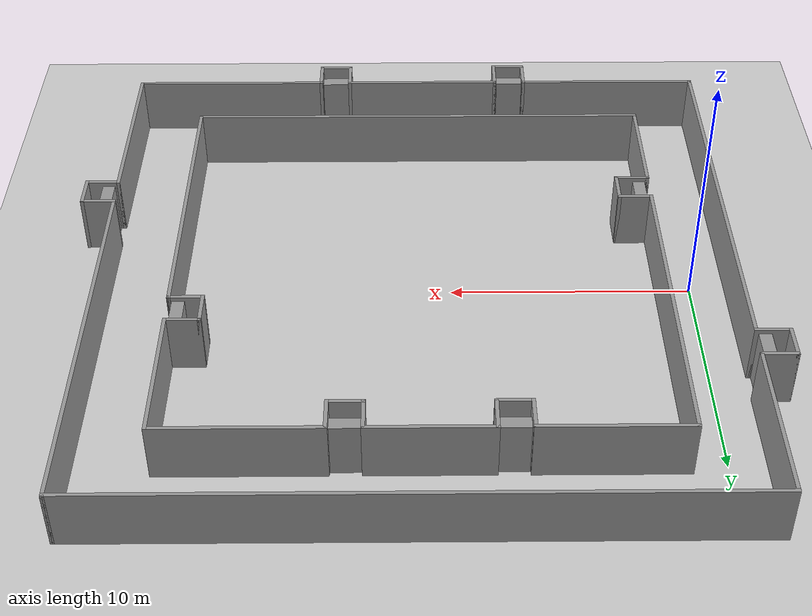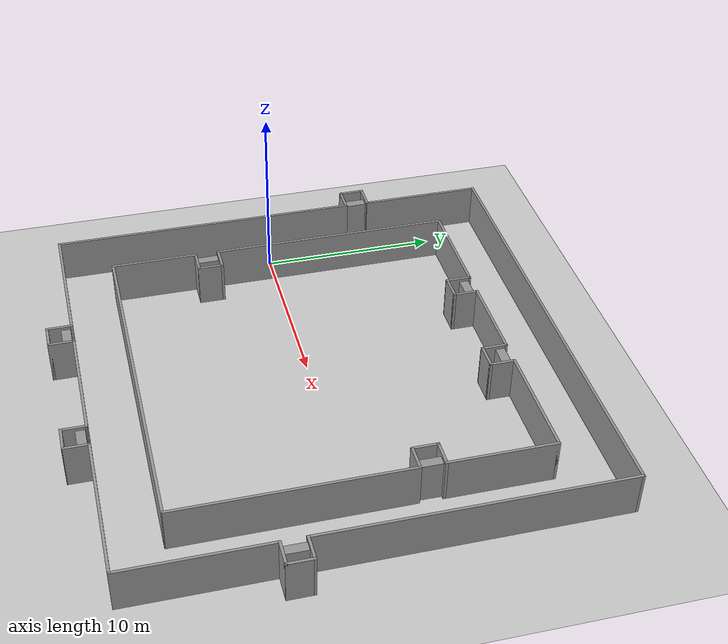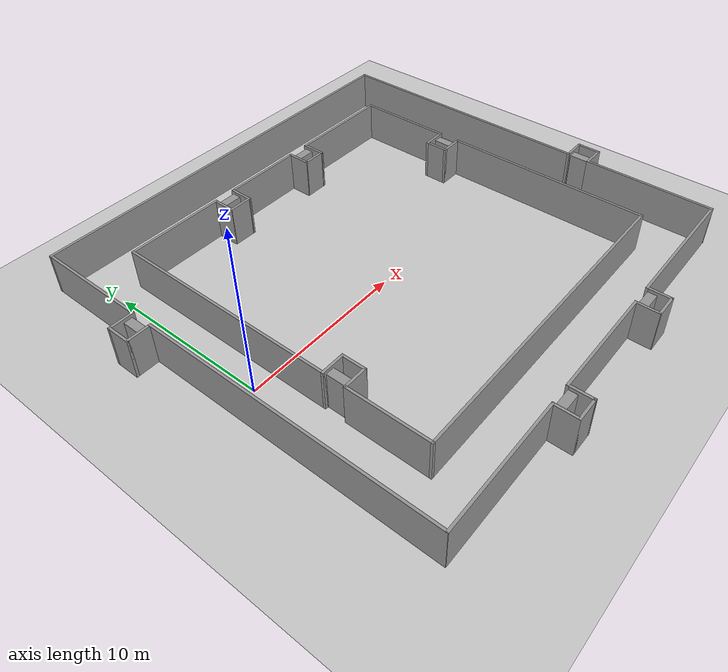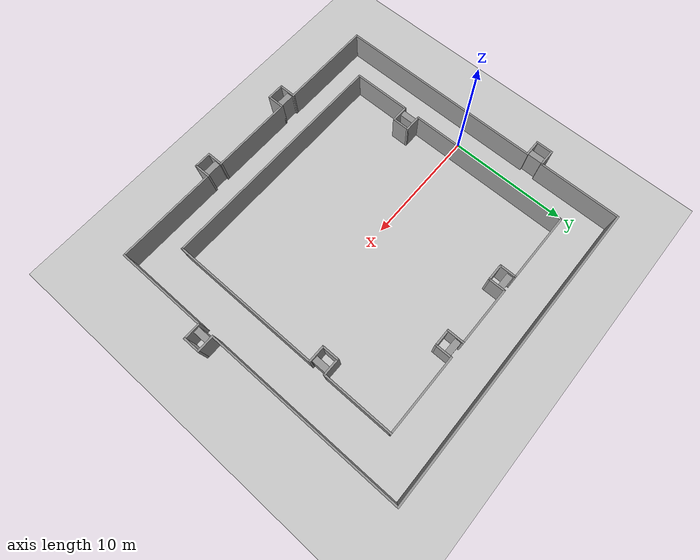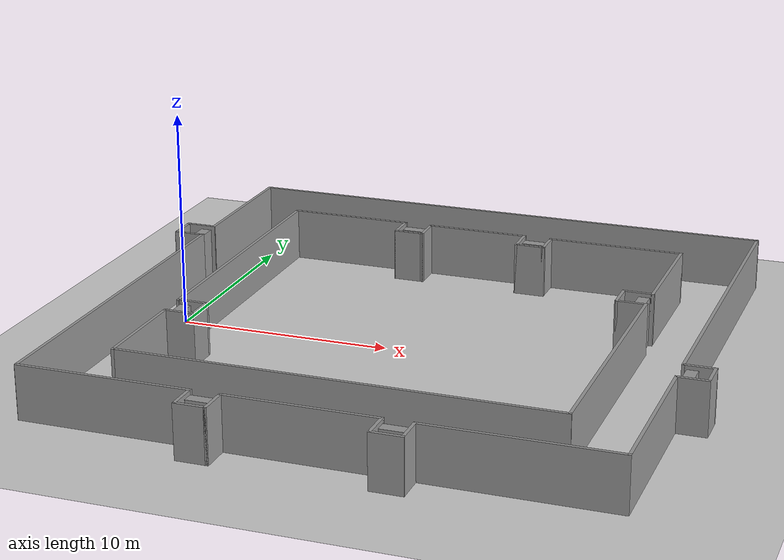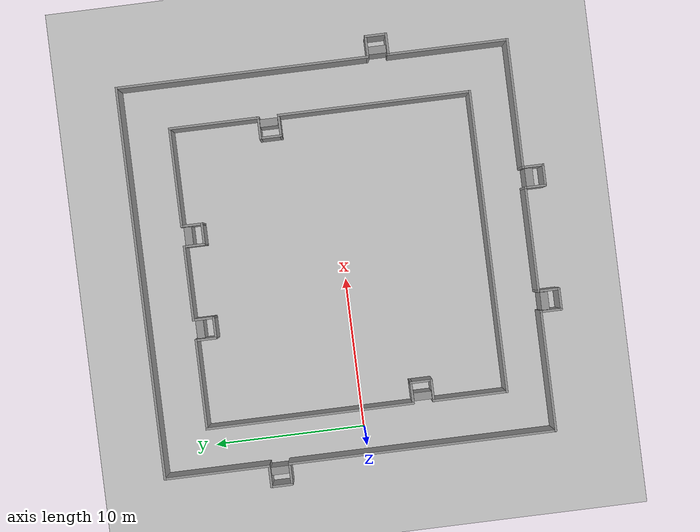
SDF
<sdf version="1.7">
 <world name="default">
  <light name="sun" type="directional">
   <pose>0 0 10 0 -0 0</pose>
   <diffuse>0.8 0.8 0.8 1</diffuse>
   <specular>0.2 0.2 0.2 1</specular>
   <attenuation>
    <range>1000</range>
    <constant>0.9</constant>
    <linear>0.01</linear>
    <quadratic>0.001</quadratic>
   </attenuation>
   <direction>-0.5 0.1 -0.9</direction>
   <spot><inner_angle>0</inner_angle><outer_angle>0</outer_angle><falloff>0</falloff></spot>
  </light>
  <model name="ground_plane">
   <static>1</static>
   <link name="link">
    <collision name="collision">
     <geometry><plane><normal>0 0 1</normal><size>100 100</size></plane></geometry>
     <surface><friction><ode><mu>100</mu><mu2>50</mu2></ode></friction></surface>
    </collision>
    <visual name="visual">
     <cast_shadows>0</cast_shadows>
     <geometry><plane><normal>0 0 1</normal><size>100 100</size></plane></geometry>
     <material>
      <script><uri>file://media/materials/scripts/gazebo.material</uri><name>Gazebo/Grey</name></script>
     </material>
    </visual>
   </link>
  </model>
  <gravity>0 0 -9.8</gravity>
  <magnetic_field>6e-06 2.3e-05 -4.2e-05</magnetic_field>
  <atmosphere type="adiabatic"/>
  <physics type="ode">
   <max_step_size>0.001</max_step_size>
   <real_time_factor>1</real_time_factor>
   <real_time_update_rate>1000</real_time_update_rate>
  </physics>
  <scene><ambient>0.4 0.4 0.4 1</ambient><background>0.7 0.7 0.7 1</background><shadows>1</shadows></scene>
  <spherical_coordinates>
   <surface_model>EARTH_WGS84</surface_model>
   <latitude_deg>0</latitude_deg>
   <longitude_deg>0</longitude_deg>
   <elevation>0</elevation>
   <heading_deg>0</heading_deg>
  </spherical_coordinates>
  <model name="4corners_with_8doors">
   <pose>11.3795 -0.187 0 0 -0 0</pose>
   <link name="Wall_110">
    <collision name="Wall_110_Collision">
     <geometry><box><size>26 0.15 2.5</size></box></geometry>
     <pose>0 0 1.25 0 -0 0</pose>
    </collision>
    <visual name="Wall_110_Visual">
     <pose>0 0 1.25 0 -0 0</pose>
     <geometry><box><size>26 0.15 2.5</size></box></geometry>
     <material>
      <script><uri>file://media/materials/scripts/gazebo.material</uri><name>Gazebo/Grey</name></script>
      <ambient>1 1 1 1</ambient>
     </material>
     <meta><layer>0</layer></meta>
    </visual>
    <pose>0.008475 13.6 0 0 -0 0</pose>
   </link>
   <link name="Wall_139">
    <collision name="Wall_139_Collision">
     <geometry><box><size>1.5 0.15 2.5</size></box></geometry>
     <pose>0 0 1.25 0 -0 0</pose>
    </collision>
    <visual name="Wall_139_Visual">
     <pose>0 0 1.25 0 -0 0</pose>
     <geometry><box><size>1.5 0.15 2.5</size></box></geometry>
     <material>
      <script><uri>file://media/materials/scripts/gazebo.material</uri><name>Gazebo/Grey</name></script>
      <ambient>1 1 1 1</ambient>
     </material>
     <meta><layer>0</layer></meta>
    </visual>
    <pose>-13.6085 6.71528 0 0 -0 0</pose>
   </link>
   <link name="Wall_147">
    <collision name="Wall_147_Collision">
     <geometry><box><size>7 0.15 2.5</size></box></geometry>
     <pose>0 0 1.25 0 -0 0</pose>
    </collision>
    <visual name="Wall_147_Visual">
     <pose>0 0 1.25 0 -0 0</pose>
     <geometry><box><size>7 0.15 2.5</size></box></geometry>
     <material>
      <script><uri>file://media/materials/scripts/gazebo.material</uri><name>Gazebo/Grey</name></script>
      <ambient>1 1 1 1</ambient>
     </material>
     <meta><layer>0</layer></meta>
    </visual>
    <pose>-12.9165 10.175 0 0 -0 -1.5708</pose>
   </link>
   <link name="Wall_149">
    <collision name="Wall_149_Collision">
     <geometry><box><size>1.5 0.15 2.5</size></box></geometry>
     <pose>0 0 1.25 0 -0 0</pose>
    </collision>
    <visual name="Wall_149_Visual">
     <pose>0 0 1.25 0 -0 0</pose>
     <geometry><box><size>1.5 0.15 2.5</size></box></geometry>
     <material>
      <script><uri>file://media/materials/scripts/gazebo.material</uri><name>Gazebo/Grey</name></script>
      <ambient>1 1 1 1</ambient>
     </material>
     <meta><layer>0</layer></meta>
    </visual>
    <pose>-14.2835 6.04028 0 0 -0 -1.5708</pose>
   </link>
   <link name="Wall_150">
    <collision name="Wall_150_Collision">
     <geometry><box><size>1.5 0.15 2.5</size></box></geometry>
     <pose>0 0 1.25 0 -0 0</pose>
    </collision>
    <visual name="Wall_150_Visual">
     <pose>0 0 1.25 0 -0 0</pose>
     <geometry><box><size>1.5 0.15 2.5</size></box></geometry>
     <material>
      <script><uri>file://media/materials/scripts/gazebo.material</uri><name>Gazebo/Grey</name></script>
      <ambient>1 1 1 1</ambient>
     </material>
     <meta><layer>0</layer></meta>
    </visual>
    <pose>-13.6085 5.36528 0 0 -0 0</pose>
   </link>
   <link name="Wall_173">
    <collision name="Wall_173_Collision">
     <geometry><box><size>8 0.15 2.5</size></box></geometry>
     <pose>0 0 1.25 0 -0 0</pose>
    </collision>
    <visual name="Wall_173_Visual">
     <pose>0 0 1.25 0 -0 0</pose>
     <geometry><box><size>8 0.15 2.5</size></box></geometry>
     <material>
      <script><uri>file://media/materials/scripts/gazebo.material</uri><name>Gazebo/Grey</name></script>
      <ambient>1 1 1 1</ambient>
     </material>
     <meta><layer>0</layer></meta>
    </visual>
    <pose>-8.99152 -12.25 0 0 -0 0</pose>
   </link>
   <link name="Wall_174">
    <collision name="Wall_174_Collision">
     <geometry><box><size>1.5 0.15 2.5</size></box></geometry>
     <pose>0 0 1.25 0 -0 0</pose>
    </collision>
    <visual name="Wall_174_Visual">
     <pose>0 0 1.25 0 -0 0</pose>
     <geometry><box><size>1.5 0.15 2.5</size></box></geometry>
     <material>
      <script><uri>file://media/materials/scripts/gazebo.material</uri><name>Gazebo/Grey</name></script>
      <ambient>1 1 1 1</ambient>
     </material>
     <meta><layer>0</layer></meta>
    </visual>
    <pose>-5.06653 -12.925 0 0 -0 -1.5708</pose>
   </link>
   <link name="Wall_175">
    <collision name="Wall_175_Collision">
     <geometry><box><size>1.5 0.15 2.5</size></box></geometry>
     <pose>0 0 1.25 0 -0 0</pose>
    </collision>
    <visual name="Wall_175_Visual">
     <pose>0 0 1.25 0 -0 0</pose>
     <geometry><box><size>1.5 0.15 2.5</size></box></geometry>
     <material>
      <script><uri>file://media/materials/scripts/gazebo.material</uri><name>Gazebo/Grey</name></script>
      <ambient>1 1 1 1</ambient>
     </material>
     <meta><layer>0</layer></meta>
    </visual>
    <pose>-4.39152 -13.6 0 0 -0 0</pose>
   </link>
   <link name="Wall_176">
    <collision name="Wall_176_Collision">
     <geometry><box><size>1.5 0.15 2.5</size></box></geometry>
     <pose>0 0 1.25 0 -0 0</pose>
    </collision>
    <visual name="Wall_176_Visual">
     <pose>0 0 1.25 0 -0 0</pose>
     <geometry><box><size>1.5 0.15 2.5</size></box></geometry>
     <material>
      <script><uri>file://media/materials/scripts/gazebo.material</uri><name>Gazebo/Grey</name></script>
      <ambient>1 1 1 1</ambient>
     </material>
     <meta><layer>0</layer></meta>
    </visual>
    <pose>-3.71652 -12.925 0 0 -0 1.5708</pose>
   </link>
   <link name="Wall_177">
    <collision name="Wall_177_Collision">
     <geometry><box><size>7 0.15 2.5</size></box></geometry>
     <pose>0 0 1.25 0 -0 0</pose>
    </collision>
    <visual name="Wall_177_Visual">
     <pose>0 0 1.25 0 -0 0</pose>
     <geometry><box><size>7 0.15 2.5</size></box></geometry>
     <material>
      <script><uri>file://media/materials/scripts/gazebo.material</uri><name>Gazebo/Grey</name></script>
      <ambient>1 1 1 1</ambient>
     </material>
     <meta><layer>0</layer></meta>
    </visual>
    <pose>-0.291525 -12.25 0 0 -0 0</pose>
   </link>
   <link name="Wall_178">
    <collision name="Wall_178_Collision">
     <geometry><box><size>1.43043 0.15 2.5</size></box></geometry>
     <pose>0 0 1.25 0 -0 0</pose>
    </collision>
    <visual name="Wall_178_Visual">
     <pose>0 0 1.25 0 -0 0</pose>
     <geometry><box><size>1.43043 0.15 2.5</size></box></geometry>
     <material>
      <script><uri>file://media/materials/scripts/gazebo.material</uri><name>Gazebo/Grey</name></script>
      <ambient>1 1 1 1</ambient>
     </material>
     <meta><layer>0</layer></meta>
    </visual>
    <pose>3.13347 -12.8902 0 0 -0 -1.5708</pose>
   </link>
   <link name="Wall_179">
    <collision name="Wall_179_Collision">
     <geometry><box><size>1.5 0.15 2.5</size></box></geometry>
     <pose>0 0 1.25 0 -0 0</pose>
    </collision>
    <visual name="Wall_179_Visual">
     <pose>0 0 1.25 0 -0 0</pose>
     <geometry><box><size>1.5 0.15 2.5</size></box></geometry>
     <material>
      <script><uri>file://media/materials/scripts/gazebo.material</uri><name>Gazebo/Grey</name></script>
      <ambient>1 1 1 1</ambient>
     </material>
     <meta><layer>0</layer></meta>
    </visual>
    <pose>3.80848 -13.5652 0 0 -0 0</pose>
   </link>
   <link name="Wall_180">
    <collision name="Wall_180_Collision">
     <geometry><box><size>1.43043 0.15 2.5</size></box></geometry>
     <pose>0 0 1.25 0 -0 0</pose>
    </collision>
    <visual name="Wall_180_Visual">
     <pose>0 0 1.25 0 -0 0</pose>
     <geometry><box><size>1.43043 0.15 2.5</size></box></geometry>
     <material>
      <script><uri>file://media/materials/scripts/gazebo.material</uri><name>Gazebo/Grey</name></script>
      <ambient>1 1 1 1</ambient>
     </material>
     <meta><layer>0</layer></meta>
    </visual>
    <pose>4.48348 -12.8902 0 0 -0 1.5708</pose>
   </link>
   <link name="Wall_181">
    <collision name="Wall_181_Collision">
     <geometry><box><size>8.6 0.15 2.5</size></box></geometry>
     <pose>0 0 1.25 0 -0 0</pose>
    </collision>
    <visual name="Wall_181_Visual">
     <pose>0 0 1.25 0 -0 0</pose>
     <geometry><box><size>8.6 0.15 2.5</size></box></geometry>
     <material>
      <script><uri>file://media/materials/scripts/gazebo.material</uri><name>Gazebo/Grey</name></script>
      <ambient>1 1 1 1</ambient>
     </material>
     <meta><layer>0</layer></meta>
    </visual>
    <pose>8.70847 -12.25 0 0 -0 0</pose>
   </link>
   <link name="Wall_185">
    <collision name="Wall_185_Collision">
     <geometry><box><size>20 0.15 2.5</size></box></geometry>
     <pose>0 0 1.25 0 -0 0</pose>
    </collision>
    <visual name="Wall_185_Visual">
     <pose>0 0 1.25 0 -0 0</pose>
     <geometry><box><size>20 0.15 2.5</size></box></geometry>
     <material>
      <script><uri>file://media/materials/scripts/gazebo.material</uri><name>Gazebo/Grey</name></script>
      <ambient>1 1 1 1</ambient>
     </material>
     <meta><layer>0</layer></meta>
    </visual>
    <pose>-0.065587 -9.39204 0 0 -0 3.14159</pose>
   </link>
   <link name="Wall_188">
    <collision name="Wall_188_Collision">
     <geometry><box><size>5 0.15 2.5</size></box></geometry>
     <pose>0 0 1.25 0 -0 0</pose>
    </collision>
    <visual name="Wall_188_Visual">
     <pose>0 0 1.25 0 -0 0</pose>
     <geometry><box><size>5 0.15 2.5</size></box></geometry>
     <material>
      <script><uri>file://media/materials/scripts/gazebo.material</uri><name>Gazebo/Grey</name></script>
      <ambient>1 1 1 1</ambient>
     </material>
     <meta><layer>0</layer></meta>
    </visual>
    <pose>-9.99059 -6.96704 0 0 -0 1.5708</pose>
   </link>
   <link name="Wall_189">
    <collision name="Wall_189_Collision">
     <geometry><box><size>1.5 0.15 2.5</size></box></geometry>
     <pose>0 0 1.25 0 -0 0</pose>
    </collision>
    <visual name="Wall_189_Visual">
     <pose>0 0 1.25 0 -0 0</pose>
     <geometry><box><size>1.5 0.15 2.5</size></box></geometry>
     <material>
      <script><uri>file://media/materials/scripts/gazebo.material</uri><name>Gazebo/Grey</name></script>
      <ambient>1 1 1 1</ambient>
     </material>
     <meta><layer>0</layer></meta>
    </visual>
    <pose>-9.31559 -4.54204 0 0 -0 0</pose>
   </link>
   <link name="Wall_190">
    <collision name="Wall_190_Collision">
     <geometry><box><size>1.5 0.15 2.5</size></box></geometry>
     <pose>0 0 1.25 0 -0 0</pose>
    </collision>
    <visual name="Wall_190_Visual">
     <pose>0 0 1.25 0 -0 0</pose>
     <geometry><box><size>1.5 0.15 2.5</size></box></geometry>
     <material>
      <script><uri>file://media/materials/scripts/gazebo.material</uri><name>Gazebo/Grey</name></script>
      <ambient>1 1 1 1</ambient>
     </material>
     <meta><layer>0</layer></meta>
    </visual>
    <pose>-8.64059 -3.86704 0 0 -0 1.5708</pose>
   </link>
   <link name="Wall_191">
    <collision name="Wall_191_Collision">
     <geometry><box><size>1.5 0.15 2.5</size></box></geometry>
     <pose>0 0 1.25 0 -0 0</pose>
    </collision>
    <visual name="Wall_191_Visual">
     <pose>0 0 1.25 0 -0 0</pose>
     <geometry><box><size>1.5 0.15 2.5</size></box></geometry>
     <material>
      <script><uri>file://media/materials/scripts/gazebo.material</uri><name>Gazebo/Grey</name></script>
      <ambient>1 1 1 1</ambient>
     </material>
     <meta><layer>0</layer></meta>
    </visual>
    <pose>-9.31559 -3.19204 0 0 -0 3.14159</pose>
   </link>
   <link name="Wall_192">
    <collision name="Wall_192_Collision">
     <geometry><box><size>13.8 0.15 2.5</size></box></geometry>
     <pose>0 0 1.25 0 -0 0</pose>
    </collision>
    <visual name="Wall_192_Visual">
     <pose>0 0 1.25 0 -0 0</pose>
     <geometry><box><size>13.8 0.15 2.5</size></box></geometry>
     <material>
      <script><uri>file://media/materials/scripts/gazebo.material</uri><name>Gazebo/Grey</name></script>
      <ambient>1 1 1 1</ambient>
     </material>
     <meta><layer>0</layer></meta>
    </visual>
    <pose>-9.99059 3.63296 0 0 -0 1.5708</pose>
   </link>
   <link name="Wall_194">
    <collision name="Wall_194_Collision">
     <geometry><box><size>8 0.15 2.5</size></box></geometry>
     <pose>0 0 1.25 0 -0 0</pose>
    </collision>
    <visual name="Wall_194_Visual">
     <pose>0 0 1.25 0 -0 0</pose>
     <geometry><box><size>8 0.15 2.5</size></box></geometry>
     <material>
      <script><uri>file://media/materials/scripts/gazebo.material</uri><name>Gazebo/Grey</name></script>
      <ambient>1 1 1 1</ambient>
     </material>
     <meta><layer>0</layer></meta>
    </visual>
    <pose>12.9335 -8.325 0 0 -0 1.5708</pose>
   </link>
   <link name="Wall_195">
    <collision name="Wall_195_Collision">
     <geometry><box><size>1.5 0.15 2.5</size></box></geometry>
     <pose>0 0 1.25 0 -0 0</pose>
    </collision>
    <visual name="Wall_195_Visual">
     <pose>0 0 1.25 0 -0 0</pose>
     <geometry><box><size>1.5 0.15 2.5</size></box></geometry>
     <material>
      <script><uri>file://media/materials/scripts/gazebo.material</uri><name>Gazebo/Grey</name></script>
      <ambient>1 1 1 1</ambient>
     </material>
     <meta><layer>0</layer></meta>
    </visual>
    <pose>13.6085 -4.4 0 0 -0 0</pose>
   </link>
   <link name="Wall_196">
    <collision name="Wall_196_Collision">
     <geometry><box><size>1.5 0.15 2.5</size></box></geometry>
     <pose>0 0 1.25 0 -0 0</pose>
    </collision>
    <visual name="Wall_196_Visual">
     <pose>0 0 1.25 0 -0 0</pose>
     <geometry><box><size>1.5 0.15 2.5</size></box></geometry>
     <material>
      <script><uri>file://media/materials/scripts/gazebo.material</uri><name>Gazebo/Grey</name></script>
      <ambient>1 1 1 1</ambient>
     </material>
     <meta><layer>0</layer></meta>
    </visual>
    <pose>14.2835 -3.725 0 0 -0 1.5708</pose>
   </link>
   <link name="Wall_197">
    <collision name="Wall_197_Collision">
     <geometry><box><size>1.5 0.15 2.5</size></box></geometry>
     <pose>0 0 1.25 0 -0 0</pose>
    </collision>
    <visual name="Wall_197_Visual">
     <pose>0 0 1.25 0 -0 0</pose>
     <geometry><box><size>1.5 0.15 2.5</size></box></geometry>
     <material>
      <script><uri>file://media/materials/scripts/gazebo.material</uri><name>Gazebo/Grey</name></script>
      <ambient>1 1 1 1</ambient>
     </material>
     <meta><layer>0</layer></meta>
    </visual>
    <pose>13.6085 -3.05 0 0 -0 3.14159</pose>
   </link>
   <link name="Wall_198">
    <collision name="Wall_198_Collision">
     <geometry><box><size>16.8 0.15 2.5</size></box></geometry>
     <pose>0 0 1.25 0 -0 0</pose>
    </collision>
    <visual name="Wall_198_Visual">
     <pose>0 0 1.25 0 -0 0</pose>
     <geometry><box><size>16.8 0.15 2.5</size></box></geometry>
     <material>
      <script><uri>file://media/materials/scripts/gazebo.material</uri><name>Gazebo/Grey</name></script>
      <ambient>1 1 1 1</ambient>
     </material>
     <meta><layer>0</layer></meta>
    </visual>
    <pose>12.9335 5.275 0 0 -0 1.5708</pose>
   </link>
   <link name="Wall_200">
    <collision name="Wall_200_Collision">
     <geometry><box><size>6 0.15 2.5</size></box></geometry>
     <pose>0 0 1.25 0 -0 0</pose>
    </collision>
    <visual name="Wall_200_Visual">
     <pose>0 0 1.25 0 -0 0</pose>
     <geometry><box><size>6 0.15 2.5</size></box></geometry>
     <material>
      <script><uri>file://media/materials/scripts/gazebo.material</uri><name>Gazebo/Grey</name></script>
      <ambient>1 1 1 1</ambient>
     </material>
     <meta><layer>0</layer></meta>
    </visual>
    <pose>9.85947 7.533 0 0 -0 -1.5708</pose>
   </link>
   <link name="Wall_201">
    <collision name="Wall_201_Collision">
     <geometry><box><size>1.5 0.15 2.5</size></box></geometry>
     <pose>0 0 1.25 0 -0 0</pose>
    </collision>
    <visual name="Wall_201_Visual">
     <pose>0 0 1.25 0 -0 0</pose>
     <geometry><box><size>1.5 0.15 2.5</size></box></geometry>
     <material>
      <script><uri>file://media/materials/scripts/gazebo.material</uri><name>Gazebo/Grey</name></script>
      <ambient>1 1 1 1</ambient>
     </material>
     <meta><layer>0</layer></meta>
    </visual>
    <pose>9.18447 4.608 0 0 -0 3.14159</pose>
   </link>
   <link name="Wall_202">
    <collision name="Wall_202_Collision">
     <geometry><box><size>1.5 0.15 2.5</size></box></geometry>
     <pose>0 0 1.25 0 -0 0</pose>
    </collision>
    <visual name="Wall_202_Visual">
     <pose>0 0 1.25 0 -0 0</pose>
     <geometry><box><size>1.5 0.15 2.5</size></box></geometry>
     <material>
      <script><uri>file://media/materials/scripts/gazebo.material</uri><name>Gazebo/Grey</name></script>
      <ambient>1 1 1 1</ambient>
     </material>
     <meta><layer>0</layer></meta>
    </visual>
    <pose>8.50948 3.933 0 0 -0 -1.5708</pose>
   </link>
   <link name="Wall_203">
    <collision name="Wall_203_Collision">
     <geometry><box><size>1.46975 0.15 2.5</size></box></geometry>
     <pose>0 0 1.25 0 -0 0</pose>
    </collision>
    <visual name="Wall_203_Visual">
     <pose>0 0 1.25 0 -0 0</pose>
     <geometry><box><size>1.46975 0.15 2.5</size></box></geometry>
     <material>
      <script><uri>file://media/materials/scripts/gazebo.material</uri><name>Gazebo/Grey</name></script>
      <ambient>1 1 1 1</ambient>
     </material>
     <meta><layer>0</layer></meta>
    </visual>
    <pose>9.16935 3.258 0 0 -0 0</pose>
   </link>
   <link name="Wall_204">
    <collision name="Wall_204_Collision">
     <geometry><box><size>12.75 0.15 2.5</size></box></geometry>
     <pose>0 0 1.25 0 -0 0</pose>
    </collision>
    <visual name="Wall_204_Visual">
     <pose>0 0 1.25 0 -0 0</pose>
     <geometry><box><size>12.75 0.15 2.5</size></box></geometry>
     <material>
      <script><uri>file://media/materials/scripts/gazebo.material</uri><name>Gazebo/Grey</name></script>
      <ambient>1 1 1 1</ambient>
     </material>
     <meta><layer>0</layer></meta>
    </visual>
    <pose>9.85947 -3.042 0 0 -0 -1.5708</pose>
   </link>
   <link name="Wall_211">
    <collision name="Wall_211_Collision">
     <geometry><box><size>6 0.15 2.5</size></box></geometry>
     <pose>0 0 1.25 0 -0 0</pose>
    </collision>
    <visual name="Wall_211_Visual">
     <pose>0 0 1.25 0 -0 0</pose>
     <geometry><box><size>6 0.15 2.5</size></box></geometry>
     <material>
      <script><uri>file://media/materials/scripts/gazebo.material</uri><name>Gazebo/Grey</name></script>
      <ambient>1 1 1 1</ambient>
     </material>
     <meta><layer>0</layer></meta>
    </visual>
    <pose>-7.06559 10.458 0 0 -0 0</pose>
   </link>
   <link name="Wall_212">
    <collision name="Wall_212_Collision">
     <geometry><box><size>1.47396 0.15 2.5</size></box></geometry>
     <pose>0 0 1.25 0 -0 0</pose>
    </collision>
    <visual name="Wall_212_Visual">
     <pose>0 0 1.25 0 -0 0</pose>
     <geometry><box><size>1.47396 0.15 2.5</size></box></geometry>
     <material>
      <script><uri>file://media/materials/scripts/gazebo.material</uri><name>Gazebo/Grey</name></script>
      <ambient>1 1 1 1</ambient>
     </material>
     <meta><layer>0</layer></meta>
    </visual>
    <pose>-4.14056 9.79598 0 0 -0 -1.57075</pose>
   </link>
   <link name="Wall_213">
    <collision name="Wall_213_Collision">
     <geometry><box><size>1.5 0.15 2.5</size></box></geometry>
     <pose>0 0 1.25 0 -0 0</pose>
    </collision>
    <visual name="Wall_213_Visual">
     <pose>0 0 1.25 0 -0 0</pose>
     <geometry><box><size>1.5 0.15 2.5</size></box></geometry>
     <material>
      <script><uri>file://media/materials/scripts/gazebo.material</uri><name>Gazebo/Grey</name></script>
      <ambient>1 1 1 1</ambient>
     </material>
     <meta><layer>0</layer></meta>
    </visual>
    <pose>-3.46552 9.134 0 0 -0 0</pose>
   </link>
   <link name="Wall_214">
    <collision name="Wall_214_Collision">
     <geometry><box><size>1.47396 0.15 2.5</size></box></geometry>
     <pose>0 0 1.25 0 -0 0</pose>
    </collision>
    <visual name="Wall_214_Visual">
     <pose>0 0 1.25 0 -0 0</pose>
     <geometry><box><size>1.47396 0.15 2.5</size></box></geometry>
     <material>
      <script><uri>file://media/materials/scripts/gazebo.material</uri><name>Gazebo/Grey</name></script>
      <ambient>1 1 1 1</ambient>
     </material>
     <meta><layer>0</layer></meta>
    </visual>
    <pose>-2.79056 9.79598 0 0 -0 1.57084</pose>
   </link>
   <link name="Wall_215">
    <collision name="Wall_215_Collision">
     <geometry><box><size>5 0.15 2.5</size></box></geometry>
     <pose>0 0 1.25 0 -0 0</pose>
    </collision>
    <visual name="Wall_215_Visual">
     <pose>0 0 1.25 0 -0 0</pose>
     <geometry><box><size>5 0.15 2.5</size></box></geometry>
     <material>
      <script><uri>file://media/materials/scripts/gazebo.material</uri><name>Gazebo/Grey</name></script>
      <ambient>1 1 1 1</ambient>
     </material>
     <meta><layer>0</layer></meta>
    </visual>
    <pose>-0.365587 10.458 0 0 -0 0</pose>
   </link>
   <link name="Wall_216">
    <collision name="Wall_216_Collision">
     <geometry><box><size>1.47396 0.15 2.5</size></box></geometry>
     <pose>0 0 1.25 0 -0 0</pose>
    </collision>
    <visual name="Wall_216_Visual">
     <pose>0 0 1.25 0 -0 0</pose>
     <geometry><box><size>1.47396 0.15 2.5</size></box></geometry>
     <material>
      <script><uri>file://media/materials/scripts/gazebo.material</uri><name>Gazebo/Grey</name></script>
      <ambient>1 1 1 1</ambient>
     </material>
     <meta><layer>0</layer></meta>
    </visual>
    <pose>2.05944 9.79598 0 0 -0 -1.57075</pose>
   </link>
   <link name="Wall_217">
    <collision name="Wall_217_Collision">
     <geometry><box><size>1.5 0.15 2.5</size></box></geometry>
     <pose>0 0 1.25 0 -0 0</pose>
    </collision>
    <visual name="Wall_217_Visual">
     <pose>0 0 1.25 0 -0 0</pose>
     <geometry><box><size>1.5 0.15 2.5</size></box></geometry>
     <material>
      <script><uri>file://media/materials/scripts/gazebo.material</uri><name>Gazebo/Grey</name></script>
      <ambient>1 1 1 1</ambient>
     </material>
     <meta><layer>0</layer></meta>
    </visual>
    <pose>2.73448 9.134 0 0 -0 0</pose>
   </link>
   <link name="Wall_218">
    <collision name="Wall_218_Collision">
     <geometry><box><size>1.47396 0.15 2.5</size></box></geometry>
     <pose>0 0 1.25 0 -0 0</pose>
    </collision>
    <visual name="Wall_218_Visual">
     <pose>0 0 1.25 0 -0 0</pose>
     <geometry><box><size>1.47396 0.15 2.5</size></box></geometry>
     <material>
      <script><uri>file://media/materials/scripts/gazebo.material</uri><name>Gazebo/Grey</name></script>
      <ambient>1 1 1 1</ambient>
     </material>
     <meta><layer>0</layer></meta>
    </visual>
    <pose>3.40944 9.79598 0 0 -0 1.57084</pose>
   </link>
   <link name="Wall_219">
    <collision name="Wall_219_Collision">
     <geometry><box><size>6.60006 0.15 2.5</size></box></geometry>
     <pose>0 0 1.25 0 -0 0</pose>
    </collision>
    <visual name="Wall_219_Visual">
     <pose>0 0 1.25 0 -0 0</pose>
     <geometry><box><size>6.60006 0.15 2.5</size></box></geometry>
     <material>
      <script><uri>file://media/materials/scripts/gazebo.material</uri><name>Gazebo/Grey</name></script>
      <ambient>1 1 1 1</ambient>
     </material>
     <meta><layer>0</layer></meta>
    </visual>
    <pose>6.63445 10.458 0 0 -0 7e-06</pose>
   </link>
   <link name="Wall_221">
    <collision name="Wall_221_Collision">
     <geometry><box><size>17.75 0.15 2.5</size></box></geometry>
     <pose>0 0 1.25 0 -0 0</pose>
    </collision>
    <visual name="Wall_221_Visual">
     <pose>0 0 1.25 0 -0 0</pose>
     <geometry><box><size>17.75 0.15 2.5</size></box></geometry>
     <material>
      <script><uri>file://media/materials/scripts/gazebo.material</uri><name>Gazebo/Grey</name></script>
      <ambient>1 1 1 1</ambient>
     </material>
     <meta><layer>0</layer></meta>
    </visual>
    <pose>-12.9335 -3.43472 0 0 -0 -1.5708</pose>
   </link>
   <static>1</static>
  </model>
  <plugin name="ActorPosesPlugin" filename="libActorPosesPlugin.so"/>
  <model name="unit_box">
   <pose>1.76605 -4.05574 1.15791 3e-06 -0 0.000115</pose>
   <link name="link">
    <inertial>
     <mass>1</mass>
     <inertia>
      <ixx>0.166667</ixx>
      <ixy>0</ixy>
      <ixz>0</ixz>
      <iyy>0.166667</iyy>
      <iyz>0</iyz>
      <izz>0.166667</izz>
     </inertia>
    </inertial>
    <collision name="collision"><geometry><box><size>0.519633 1.17725 2.31583</size></box></geometry></collision>
    <visual name="visual">
     <geometry><box><size>0.519633 1.17725 2.31583</size></box></geometry>
     <material>
      <script><name>Gazebo/Grey</name><uri>file://media/materials/scripts/gazebo.material</uri></script>
     </material>
    </visual>
   </link>
  </model>
  <model name="unit_box_clone">
   <pose>-1.92416 5.84191 1.15792 0 -0 2.5e-05</pose>
   <link name="link">
    <inertial>
     <mass>1</mass>
     <inertia>
      <ixx>0.166667</ixx>
      <ixy>0</ixy>
      <ixz>0</ixz>
      <iyy>0.166667</iyy>
      <iyz>0</iyz>
      <izz>0.166667</izz>
     </inertia>
    </inertial>
    <collision name="collision"><geometry><box><size>0.519633 1.17725 2.31583</size></box></geometry></collision>
    <visual name="visual">
     <geometry><box><size>0.519633 1.17725 2.31583</size></box></geometry>
     <material>
      <script><name>Gazebo/Grey</name><uri>file://media/materials/scripts/gazebo.material</uri></script>
     </material>
    </visual>
   </link>
  </model>
  <model name="unit_box_clone_0">
   <pose>6.97768 -12.781 1.15792 -0 -0 -1.575</pose>
   <link name="link">
    <inertial>
     <mass>1</mass>
     <inertia>
      <ixx>0.166667</ixx>
      <ixy>0</ixy>
      <ixz>0</ixz>
      <iyy>0.166667</iyy>
      <iyz>0</iyz>
      <izz>0.166667</izz>
     </inertia>
    </inertial>
    <collision name="collision"><geometry><box><size>0.519633 1.17725 2.31583</size></box></geometry></collision>
    <visual name="visual">
     <geometry><box><size>0.519633 1.17725 2.31583</size></box></geometry>
     <material>
      <script><name>Gazebo/Grey</name><uri>file://media/materials/scripts/gazebo.material</uri></script>
     </material>
    </visual>
   </link>
  </model>
  <model name="unit_box_clone_0_clone">
   <pose>15.1768 -12.7892 1.15791 2e-06 -0 -1.57121</pose>
   <link name="link">
    <inertial>
     <mass>1</mass>
     <inertia>
      <ixx>0.166667</ixx>
      <ixy>0</ixy>
      <ixz>0</ixz>
      <iyy>0.166667</iyy>
      <iyz>0</iyz>
      <izz>0.166667</izz>
     </inertia>
    </inertial>
    <collision name="collision"><geometry><box><size>0.519633 1.17725 2.31583</size></box></geometry></collision>
    <visual name="visual">
     <geometry><box><size>0.519633 1.17725 2.31583</size></box></geometry>
     <material>
      <script><name>Gazebo/Grey</name><uri>file://media/materials/scripts/gazebo.material</uri></script>
     </material>
    </visual>
   </link>
  </model>
  <model name="unit_box_clone_1">
   <pose>24.718 -3.90062 1.15791 -1e-06 0 -3e-06</pose>
   <link name="link">
    <inertial>
     <mass>1</mass>
     <inertia>
      <ixx>0.166667</ixx>
      <ixy>0</ixy>
      <ixz>0</ixz>
      <iyy>0.166667</iyy>
      <iyz>0</iyz>
      <izz>0.166667</izz>
     </inertia>
    </inertial>
    <collision name="collision"><geometry><box><size>0.519633 1.17725 2.31583</size></box></geometry></collision>
    <visual name="visual">
     <geometry><box><size>0.519633 1.17725 2.31583</size></box></geometry>
     <material>
      <script><name>Gazebo/Grey</name><uri>file://media/materials/scripts/gazebo.material</uri></script>
     </material>
    </visual>
   </link>
  </model>
  <model name="unit_box_clone_1_clone">
   <pose>20.8636 3.75322 1.15792 2e-06 -0 -0.000888</pose>
   <link name="link">
    <inertial>
     <mass>1</mass>
     <inertia>
      <ixx>0.166667</ixx>
      <ixy>0</ixy>
      <ixz>0</ixz>
      <iyy>0.166667</iyy>
      <iyz>0</iyz>
      <izz>0.166667</izz>
     </inertia>
    </inertial>
    <collision name="collision"><geometry><box><size>0.519633 1.17725 2.31583</size></box></geometry></collision>
    <visual name="visual">
     <geometry><box><size>0.519633 1.17725 2.31583</size></box></geometry>
     <material>
      <script><name>Gazebo/Grey</name><uri>file://media/materials/scripts/gazebo.material</uri></script>
     </material>
    </visual>
   </link>
  </model>
  <model name="unit_box_clone_0_clone_0">
   <pose>7.92521 9.91096 1.15792 0 0 -1.57112</pose>
   <link name="link">
    <inertial>
     <mass>1</mass>
     <inertia>
      <ixx>0.166667</ixx>
      <ixy>0</ixy>
      <ixz>0</ixz>
      <iyy>0.166667</iyy>
      <iyz>0</iyz>
      <izz>0.166667</izz>
     </inertia>
    </inertial>
    <collision name="collision"><geometry><box><size>0.519633 1.17725 2.31583</size></box></geometry></collision>
    <visual name="visual">
     <geometry><box><size>0.519633 1.17725 2.31583</size></box></geometry>
     <material>
      <script><name>Gazebo/Grey</name><uri>file://media/materials/scripts/gazebo.material</uri></script>
     </material>
    </visual>
   </link>
  </model>
  <model name="unit_box_clone_0_clone_1">
   <pose>14.1085 9.91356 1.15791 2e-06 -0 -1.57501</pose>
   <link name="link">
    <inertial>
     <mass>1</mass>
     <inertia>
      <ixx>0.166667</ixx>
      <ixy>0</ixy>
      <ixz>0</ixz>
      <iyy>0.166667</iyy>
      <iyz>0</iyz>
      <izz>0.166667</izz>
     </inertia>
    </inertial>
    <collision name="collision"><geometry><box><size>0.519633 1.17725 2.31583</size></box></geometry></collision>
    <visual name="visual">
     <geometry><box><size>0.519633 1.17725 2.31583</size></box></geometry>
     <material>
      <script><name>Gazebo/Grey</name><uri>file://media/materials/scripts/gazebo.material</uri></script>
     </material>
    </visual>
   </link>
  </model>
 </world>
</sdf>
